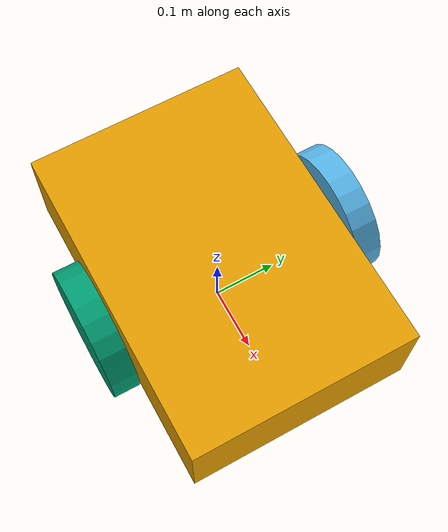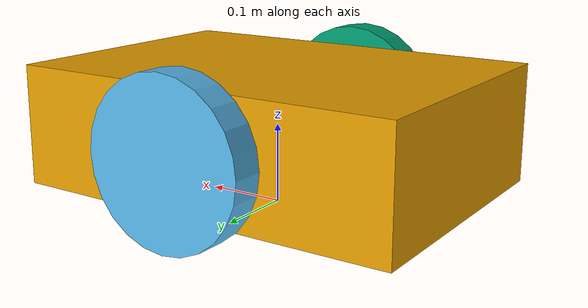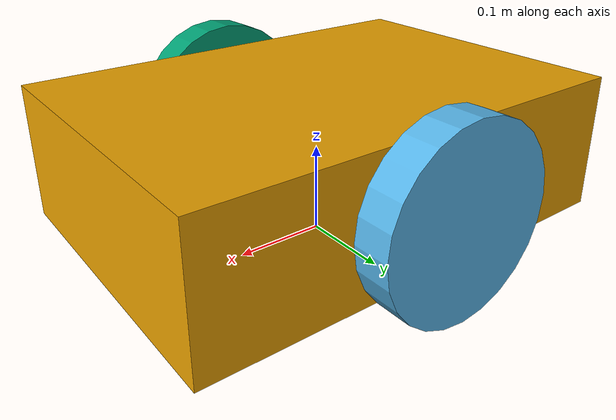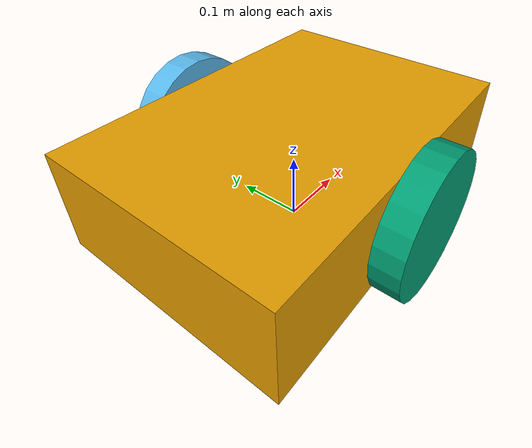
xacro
<?xml version="1.0"?>
<!-- Minimal chassis so the stack can be brought up without the full robot
     description. Replace with the real URDF; keep the joint names. -->
<robot name="mower" xmlns:xacro="http://www.ros.org/wiki/xacro">
  <xacro:arg name="device" default="/dev/ttyS0"/>

  <xacro:property name="wheel_radius" value="0.10"/>
  <xacro:property name="wheel_sep" value="0.40"/>

  <link name="base_link">
    <visual>
      <geometry><box size="0.5 0.35 0.15"/></geometry>
      <origin xyz="0 0 0.10"/>
    </visual>
  </link>

  <xacro:macro name="wheel" params="side y">
    <link name="${side}_wheel_link">
      <visual>
        <geometry><cylinder radius="${wheel_radius}" length="0.04"/></geometry>
        <origin rpy="1.5708 0 0"/>
      </visual>
    </link>
    <joint name="${side}_wheel_joint" type="continuous">
      <parent link="base_link"/>
      <child link="${side}_wheel_link"/>
      <origin xyz="0 ${y} ${wheel_radius}"/>
      <axis xyz="0 1 0"/>
    </joint>
  </xacro:macro>
  <xacro:wheel side="left" y="${wheel_sep/2}"/>
  <xacro:wheel side="right" y="${-wheel_sep/2}"/>

  <xacro:include filename="$(find mower_hardware)/urdf/mower_base.ros2_control.xacro"/>
  <xacro:mower_base_ros2_control device="$(arg device)"/>
</robot>
